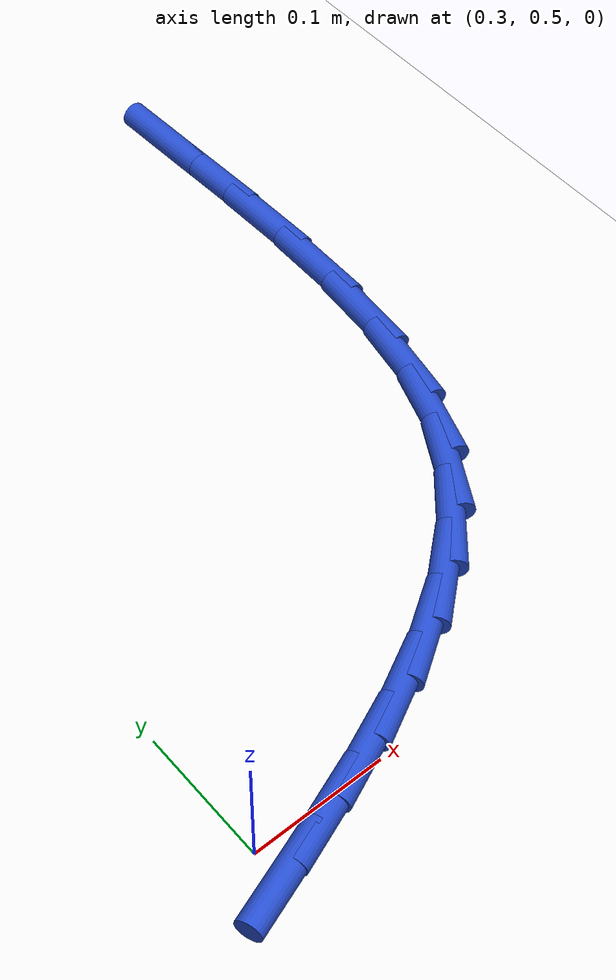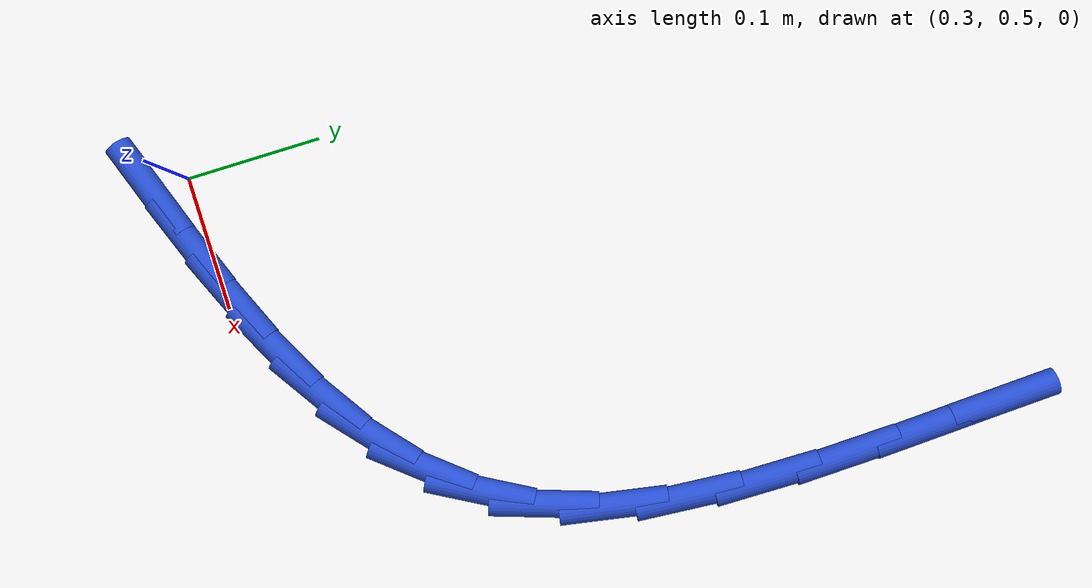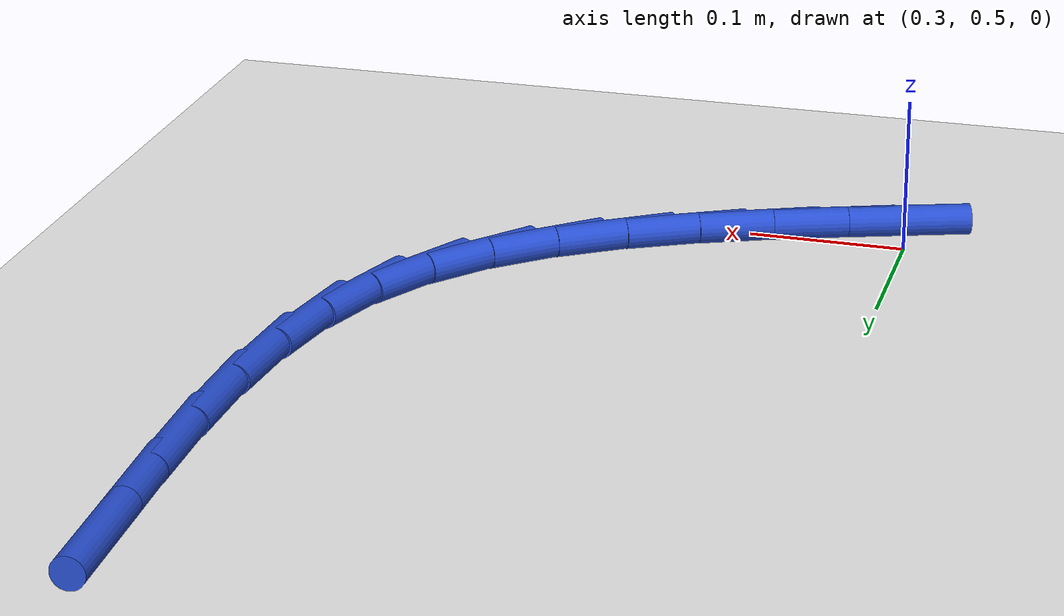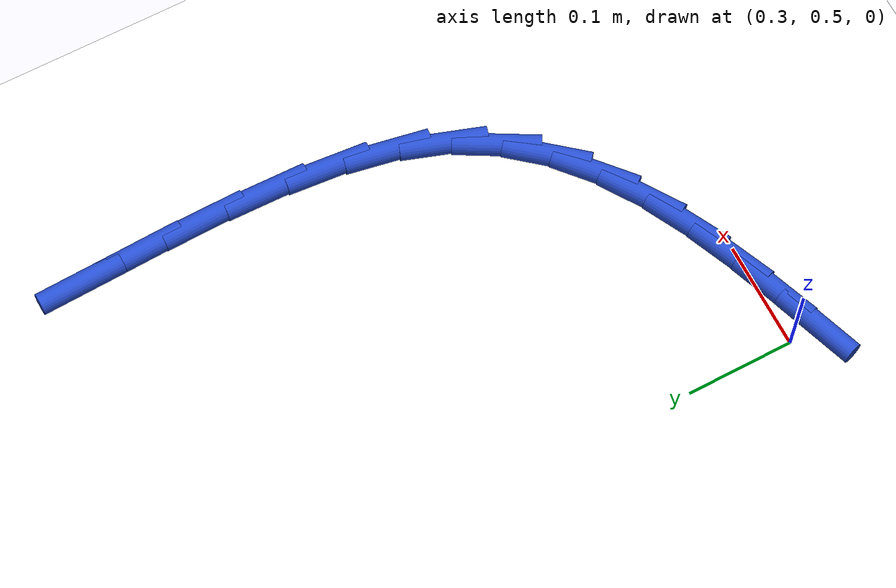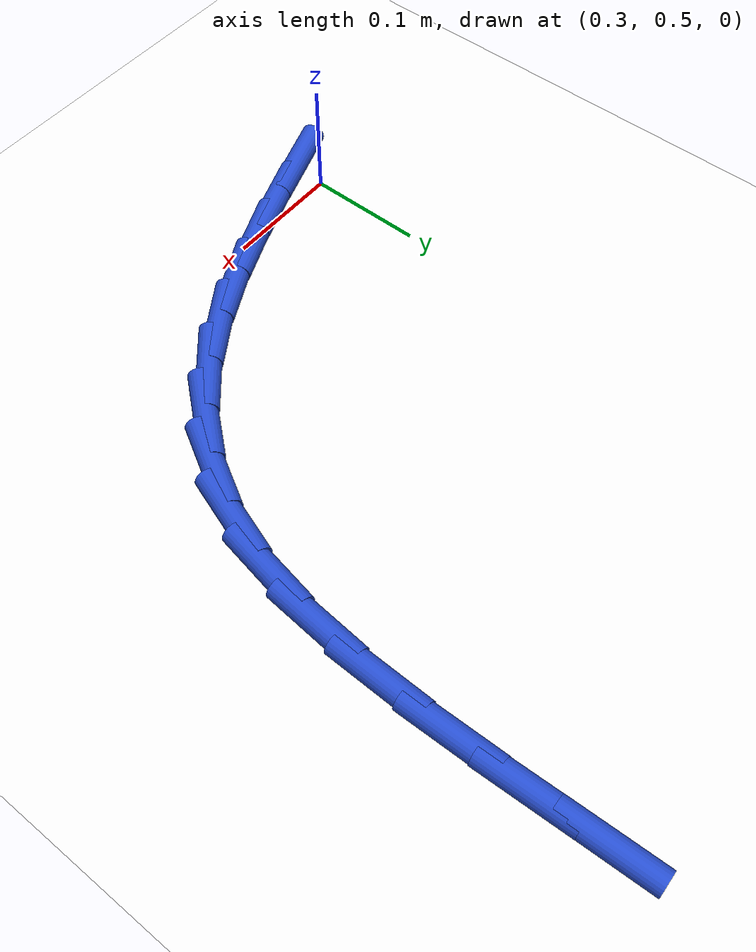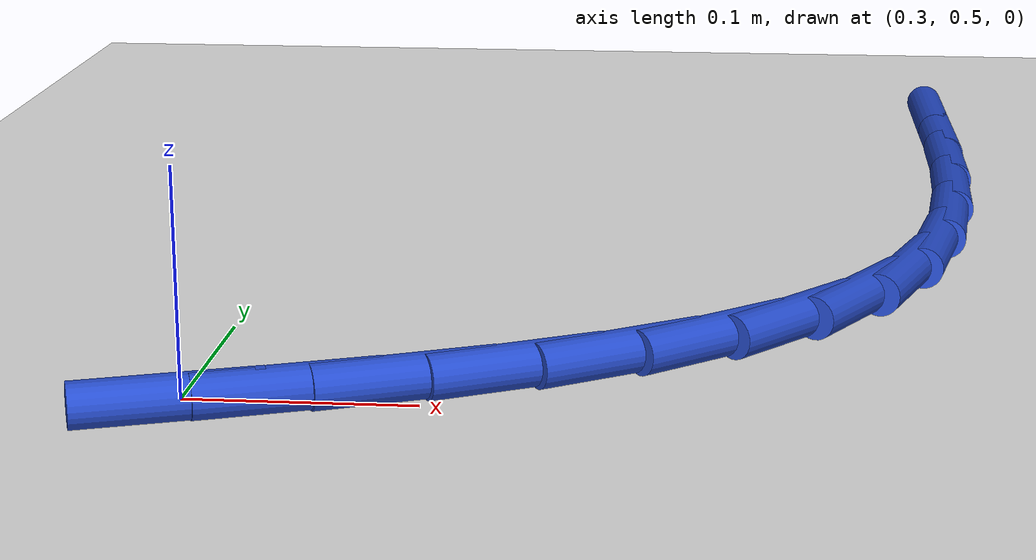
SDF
<sdf version="1.6">
 <world name="default">
  <model name="ground_plane">
   <static>1</static>
   <link name="link">
    <collision name="collision">
     <geometry><plane><normal>0 0 1</normal><size>100 100</size></plane></geometry>
     <surface><friction><ode><mu>100</mu><mu2>50</mu2></ode></friction></surface>
    </collision>
    <visual name="visual">
     <cast_shadows>0</cast_shadows>
     <geometry><plane><normal>0 0 1</normal><size>100 100</size></plane></geometry>
     <material>
      <script><uri>file://media/materials/scripts/gazebo.material</uri><name>Gazebo/WhiteGlow</name></script>
     </material>
    </visual>
   </link>
  </model>
  <model name="line">
   <link name="link_14">
    <pose>0.30127249251629246 0.47355763884467705 0.01 0 1.57 0.336415322184343</pose>
    <collision name="collision">
     <geometry><cylinder><radius>0.01</radius><length>0.08</length></cylinder></geometry>
    </collision>
    <visual name="visual">
     <material>
      <script><name>Gazebo/Blue</name><uri>file://media/materials/scripts/gazebo.material</uri></script>
     </material>
     <geometry><cylinder><radius>0.01</radius><length>0.08</length></cylinder></geometry>
    </visual>
   </link>
   <link name="link_15">
    <pose>0.34740548461304777 0.4896907494218819 0.01 0 1.57 0.35906150809012216</pose>
    <collision name="collision">
     <geometry><cylinder><radius>0.01</radius><length>0.08</length></cylinder></geometry>
    </collision>
    <visual name="visual">
     <material>
      <script><name>Gazebo/Blue</name><uri>file://media/materials/scripts/gazebo.material</uri></script>
     </material>
     <geometry><cylinder><radius>0.01</radius><length>0.08</length></cylinder></geometry>
    </visual>
   </link>
   <link name="link_16">
    <pose>0.393052296129851 0.5068234481240161 0.01 0 1.57 0.4055932291763059</pose>
    <collision name="collision">
     <geometry><cylinder><radius>0.01</radius><length>0.08</length></cylinder></geometry>
    </collision>
    <visual name="visual">
     <material>
      <script><name>Gazebo/Blue</name><uri>file://media/materials/scripts/gazebo.material</uri></script>
     </material>
     <geometry><cylinder><radius>0.01</radius><length>0.08</length></cylinder></geometry>
    </visual>
   </link>
   <link name="link_17">
    <pose>0.4372772068271033 0.525813711357435 0.01 0 1.57 0.47829293027772085</pose>
    <collision name="collision">
     <geometry><cylinder><radius>0.01</radius><length>0.08</length></cylinder></geometry>
    </collision>
    <visual name="visual">
     <material>
      <script><name>Gazebo/Blue</name><uri>file://media/materials/scripts/gazebo.material</uri></script>
     </material>
     <geometry><cylinder><radius>0.01</radius><length>0.08</length></cylinder></geometry>
    </visual>
   </link>
   <link name="link_18">
    <pose>0.47914449646520585 0.5475195155284938 0.01 0 1.57 0.580124920172925</pose>
    <collision name="collision">
     <geometry><cylinder><radius>0.01</radius><length>0.08</length></cylinder></geometry>
    </collision>
    <visual name="visual">
     <material>
      <script><name>Gazebo/Blue</name><uri>file://media/materials/scripts/gazebo.material</uri></script>
     </material>
     <geometry><cylinder><radius>0.01</radius><length>0.08</length></cylinder></geometry>
    </visual>
   </link>
   <link name="link_19">
    <pose>0.5177184448045593 0.5727988370435471 0.01 0 1.57 0.713179575315378</pose>
    <collision name="collision">
     <geometry><cylinder><radius>0.01</radius><length>0.08</length></cylinder></geometry>
    </collision>
    <visual name="visual">
     <material>
      <script><name>Gazebo/Blue</name><uri>file://media/materials/scripts/gazebo.material</uri></script>
     </material>
     <geometry><cylinder><radius>0.01</radius><length>0.08</length></cylinder></geometry>
    </visual>
   </link>
   <link name="link_20">
    <pose>0.5520633316055646 0.6025096523089503 0.01 0 1.57 0.875835509073799</pose>
    <collision name="collision">
     <geometry><cylinder><radius>0.01</radius><length>0.08</length></cylinder></geometry>
    </collision>
    <visual name="visual">
     <material>
      <script><name>Gazebo/Blue</name><uri>file://media/materials/scripts/gazebo.material</uri></script>
     </material>
     <geometry><cylinder><radius>0.01</radius><length>0.08</length></cylinder></geometry>
    </visual>
   </link>
   <link name="link_21">
    <pose>0.581243436628623 0.6375099377310585 0.01 0 1.57 1.0596260830529012</pose>
    <collision name="collision">
     <geometry><cylinder><radius>0.01</radius><length>0.08</length></cylinder></geometry>
    </collision>
    <visual name="visual">
     <material>
      <script><name>Gazebo/Blue</name><uri>file://media/materials/scripts/gazebo.material</uri></script>
     </material>
     <geometry><cylinder><radius>0.01</radius><length>0.08</length></cylinder></geometry>
    </visual>
   </link>
   <link name="link_22">
    <pose>0.6043230396341355 0.6786576697162265 0.01 0 1.57 1.2462180185621325</pose>
    <collision name="collision">
     <geometry><cylinder><radius>0.01</radius><length>0.08</length></cylinder></geometry>
    </collision>
    <visual name="visual">
     <material>
      <script><name>Gazebo/Blue</name><uri>file://media/materials/scripts/gazebo.material</uri></script>
     </material>
     <geometry><cylinder><radius>0.01</radius><length>0.08</length></cylinder></geometry>
    </visual>
   </link>
   <link name="link_23">
    <pose>0.6204798092887424 0.7266749469851748 0.01 0 1.57 1.3927947746525366</pose>
    <collision name="collision">
     <geometry><cylinder><radius>0.01</radius><length>0.08</length></cylinder></geometry>
    </collision>
    <visual name="visual">
     <material>
      <script><name>Gazebo/Blue</name><uri>file://media/materials/scripts/gazebo.material</uri></script>
     </material>
     <geometry><cylinder><radius>0.01</radius><length>0.08</length></cylinder></geometry>
    </visual>
   </link>
   <link name="link_24">
    <pose>0.6302016903049258 0.7807137210320978 0.01 0 1.57 1.4916448156838837</pose>
    <collision name="collision">
     <geometry><cylinder><radius>0.01</radius><length>0.08</length></cylinder></geometry>
    </collision>
    <visual name="visual">
     <material>
      <script><name>Gazebo/Blue</name><uri>file://media/materials/scripts/gazebo.material</uri></script>
     </material>
     <geometry><cylinder><radius>0.01</radius><length>0.08</length></cylinder></geometry>
    </visual>
   </link>
   <link name="link_25">
    <pose>0.6348182447475353 0.8389174053749285 0.01 0 1.57 1.5566697356535688</pose>
    <collision name="collision">
     <geometry><cylinder><radius>0.01</radius><length>0.08</length></cylinder></geometry>
    </collision>
    <visual name="visual">
     <material>
      <script><name>Gazebo/Blue</name><uri>file://media/materials/scripts/gazebo.material</uri></script>
     </material>
     <geometry><cylinder><radius>0.01</radius><length>0.08</length></cylinder></geometry>
    </visual>
   </link>
   <link name="link_26">
    <pose>0.6356728953595999 0.8994128038214018 0.01 0 1.57 -1.5451291700079521</pose>
    <collision name="collision">
     <geometry><cylinder><radius>0.01</radius><length>0.08</length></cylinder></geometry>
    </collision>
    <visual name="visual">
     <material>
      <script><name>Gazebo/Blue</name><uri>file://media/materials/scripts/gazebo.material</uri></script>
     </material>
     <geometry><cylinder><radius>0.01</radius><length>0.08</length></cylinder></geometry>
    </visual>
   </link>
   <link name="link_27">
    <pose>0.6341090648841485 0.9603267201792515 0.01 0 1.57 -1.5264439548182875</pose>
    <collision name="collision">
     <geometry><cylinder><radius>0.01</radius><length>0.08</length></cylinder></geometry>
    </collision>
    <visual name="visual">
     <material>
      <script><name>Gazebo/Blue</name><uri>file://media/materials/scripts/gazebo.material</uri></script>
     </material>
     <geometry><cylinder><radius>0.01</radius><length>0.08</length></cylinder></geometry>
    </visual>
   </link>
   <link name="link_28">
    <pose>0.6314701760642102 1.0197859582562128 0.01 0 1.57 -1.5285896800313323</pose>
    <collision name="collision">
     <geometry><cylinder><radius>0.01</radius><length>0.08</length></cylinder></geometry>
    </collision>
    <visual name="visual">
     <material>
      <script><name>Gazebo/Blue</name><uri>file://media/materials/scripts/gazebo.material</uri></script>
     </material>
     <geometry><cylinder><radius>0.01</radius><length>0.08</length></cylinder></geometry>
    </visual>
   </link>
  </model>
 </world>
</sdf>
